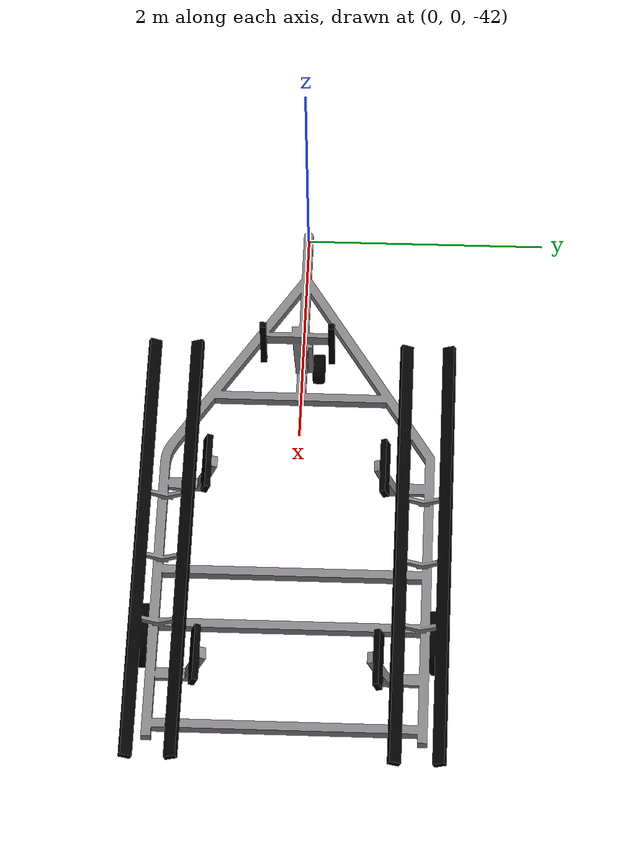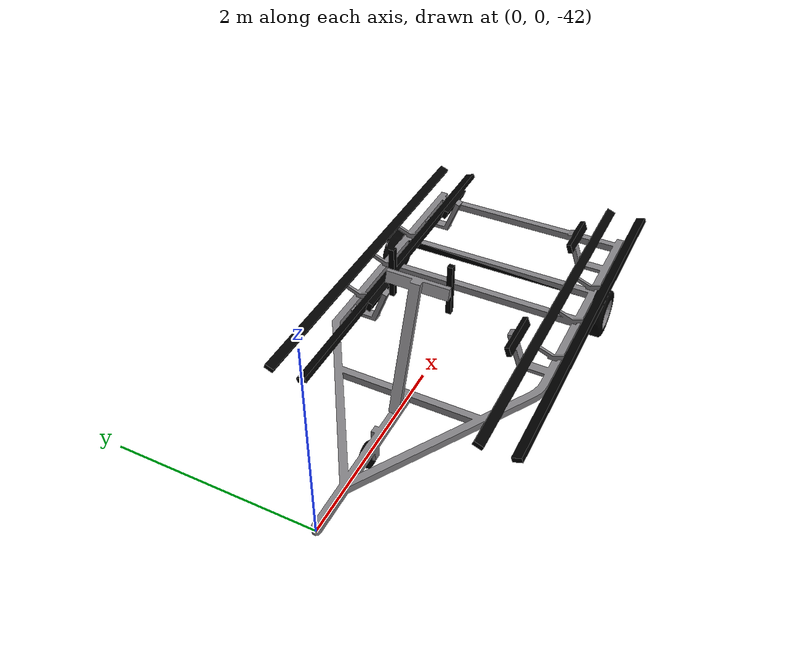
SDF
<?xml version="1.0" ?>
<sdf version="1.5">
  <model name="trailer">
    <pose>0 0 -42 0 0 0</pose>
    <static>true</static>
    <link name="body">
      <visual name="visual">
        <geometry>
          <mesh><uri>model://trailer/media/trailer.dae</uri></mesh>
        </geometry>

      </visual>
      <collision name="collision">
        <geometry>
          <mesh><uri>model://trailer/media/trailer.dae</uri></mesh>
        </geometry>
      </collision>
    </link>
  </model>
</sdf>
